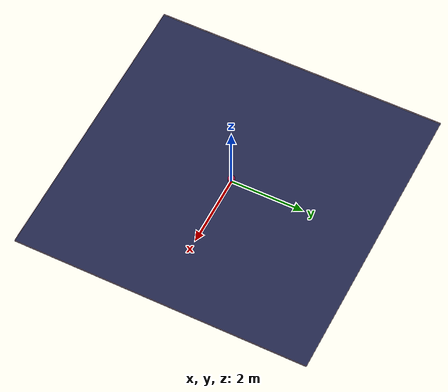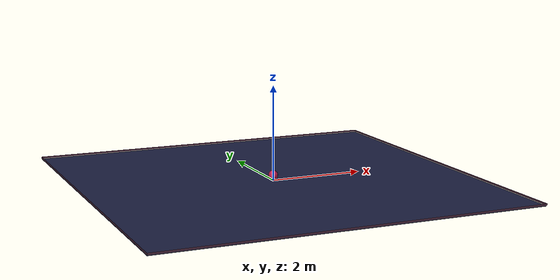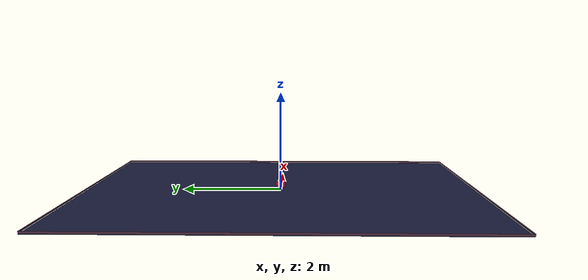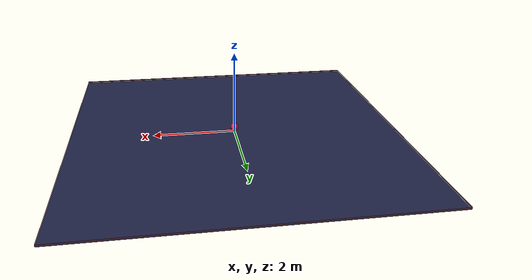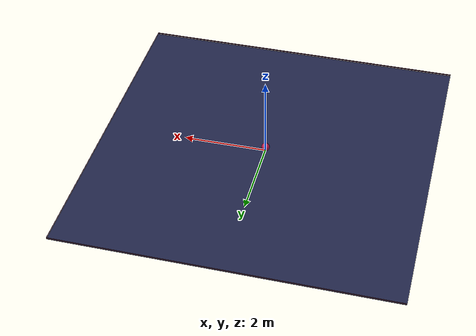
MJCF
<!--NOTE:-->
<!--COMPARE AT 30 and 100 SAMPLES with cov reg as 0.5 with 0.9 importance lambda 0.001-->
<!--0.9 importance and 1 cov reg fro 100 samples-->

<mujoco model="planar_point_mass_1D">
    <compiler angle="radian"></compiler>

    <visual>
        <quality shadowsize="2048" />
        <headlight ambient="0.4 0.4 0.4" diffuse="0.8 0.8 0.8" specular="0.1 0.1 0.1" />
    </visual>

    <option timestep="0.01" integrator="RK4">
        <flag contact="enable" energy="enable" gravity="enable"/>
    </option>

    <asset>
        <texture type="skybox" name="skybox" builtin="gradient" mark="random" rgb1="0.4 0.6 0.8" rgb2="0 0 0" markrgb="1 1 1" width="800" height="4800" />
        <texture type="2d" name="grid" builtin="checker" mark="edge" rgb1="0.1 0.2 0.3" rgb2="0.2 0.3 0.4" markrgb="0.2 0.3 0.4" width="300" height="300" />
    </asset>

    <worldbody>
        <geom name="ground" size="4 4 0.1" pos="-0.0 0 0.0" type="plane" rgba=".123 .140 .28 1"/>
        <geom name="wall_x" size="0.02 4 0.02" pos="-4 0 0.02" quat="0.707107 0 0.707107 0" type="plane" rgba=".250 .126 .2 1"/>
        <geom name="wall_y" size="4 0.02 0.02" pos="0 -4 0.02" quat="0.707107 -0.707107 0 0" type="plane" rgba=".250 .126 .2 1" />
        <geom name="wall_neg_x" size="0.02 4 0.02" pos="4 0 0.02" quat="0.707107 0 -0.707107 0" type="plane" rgba=".250 .126 .2 1"/>
        <geom name="wall_neg_y" size="4 0.02 0.02" pos="0 4 0.02" quat="0.707107 0.707107 0 0" type="plane" rgba=".250 .126 .2 1"/>
        <camera name="fixed" pos="0 0 0.75" />
        <light name="light" pos="0 0 1" dir="0 0 -1" />

        <body name="box0" pos=".0 0 .111">
            <joint name="box0_x" type="slide" axis="1 0 0" ref="0" solreflimit=".08 1" damping="5e-1"/>
            <geom  name="box0" type="sphere" size="0.1 0.11 0.1"  mass="1" rgba="0.7 0.1 0.3 1"/>
        </body>

        <body name="box1" pos=".0 0 .111">
            <joint name="box1_x" type="slide" axis="1 0 0" ref="0" solreflimit=".08 1" damping="5e-1"/>
            <geom  name="box1" type="sphere" size="0.1 0.11 0.1"  mass="1" rgba="0.2 0.5 0.3 1"/>
        </body>
    </worldbody>

    <actuator>
        <general name="slider" joint="box0_x" gear="0.35 0 0 0 0 0" />
    </actuator>
</mujoco>
